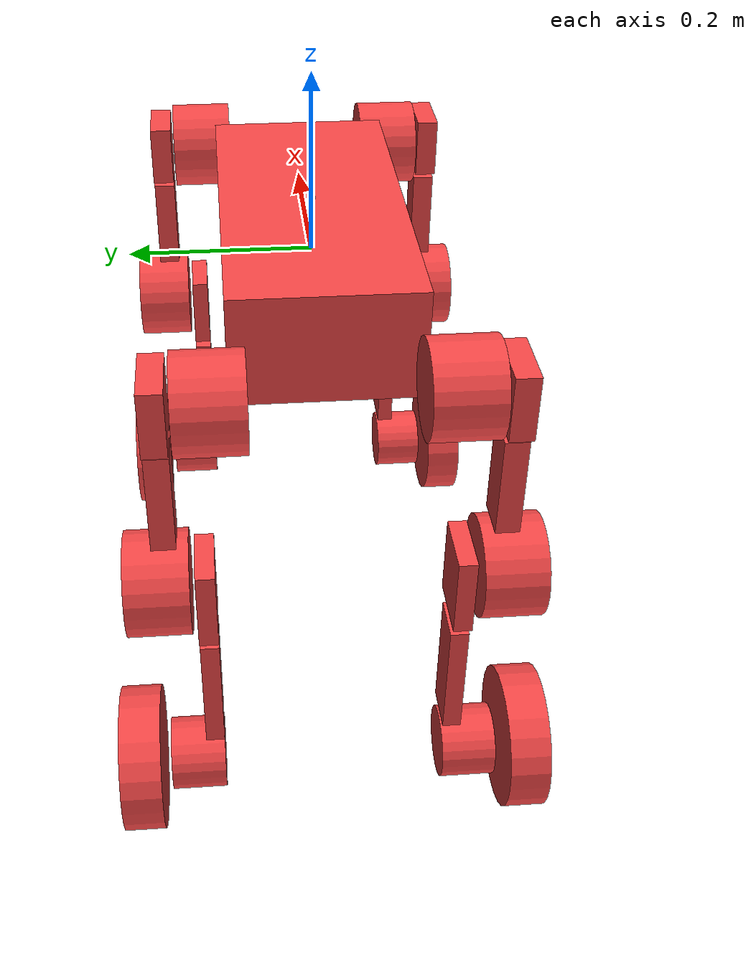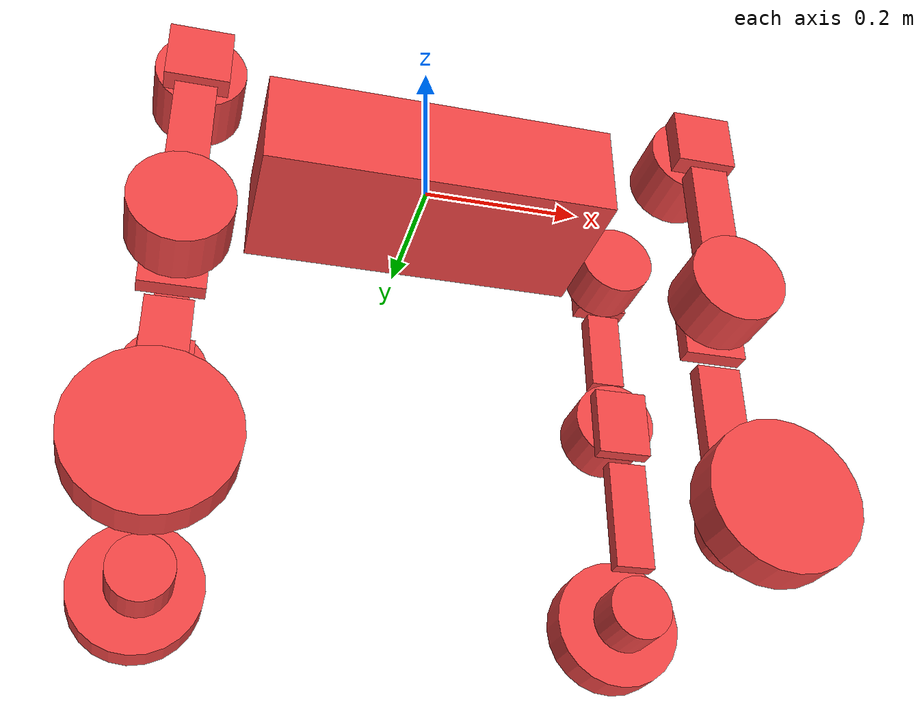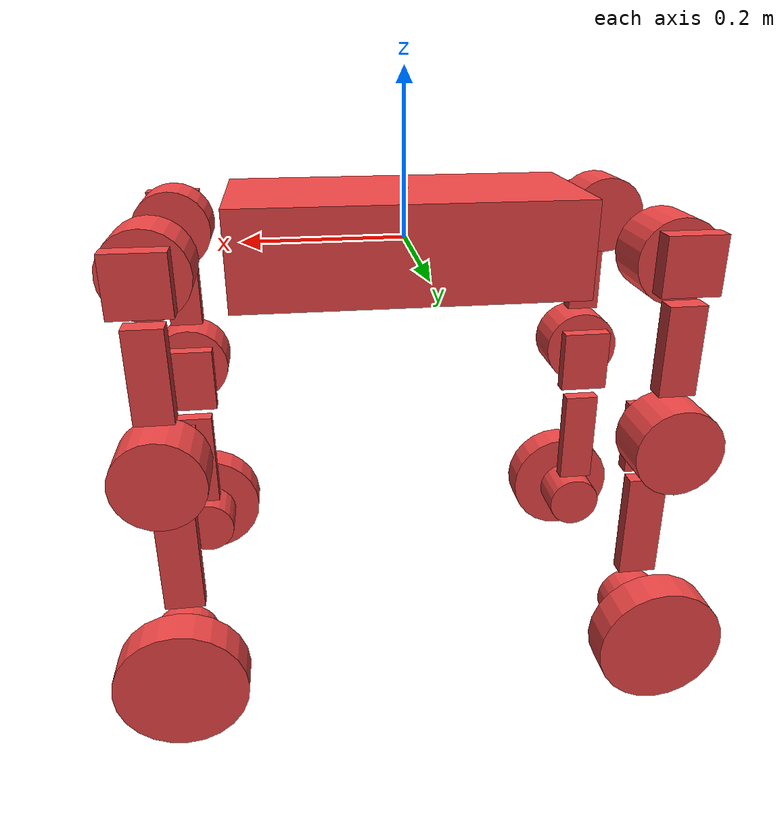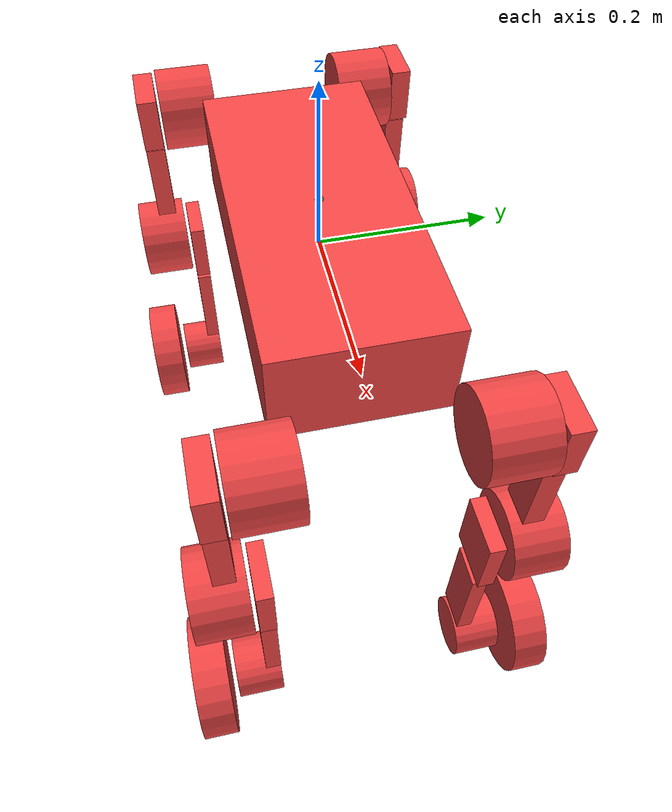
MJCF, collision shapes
<mujoco model="wolf">
  <compiler angle="radian" meshdir="assets/" inertiafromgeom="auto" inertiagrouprange="3 3" />
  <asset>
    <mesh name="base_link_simplified" file="base_link.STL" />
    <mesh name="FL_Link1" file="FL_Link1.STL" />
    <mesh name="FL_Link2" file="FL_Link2.STL" />
    <mesh name="FL_Link3" file="FL_Link3.STL" />
    <mesh name="FL_Link4" file="FL_Link4.STL" />
    <mesh name="FR_Link1" file="FR_Link1.STL" />
    <mesh name="FR_Link2" file="FR_Link2.STL" />
    <mesh name="FR_Link3" file="FR_Link3.STL" />
    <mesh name="FR_Link4" file="FR_Link4.STL" />
    <mesh name="RL_Link1" file="RL_Link1.STL" />
    <mesh name="RL_Link2" file="RL_Link2.STL" />
    <mesh name="RL_Link3" file="RL_Link3.STL" />
    <mesh name="RL_Link4" file="RL_Link4.STL" />
    <mesh name="RR_Link1" file="RR_Link1.STL" />
    <mesh name="RR_Link2" file="RR_Link2.STL" />
    <mesh name="RR_Link3" file="RR_Link3.STL" />
    <mesh name="RR_Link4" file="RR_Link4.STL" />
    <material name="base_link_mat" rgba="1 1 1 1" specular="0" />
    <material name="FL_Link1_mat" rgba="1 1 1 1" specular="0" />
    <material name="FL_Link2_mat" rgba="1 1 1 1" specular="0" />
    <material name="FL_Link3_mat" rgba="1 1 1 1" specular="0" />
    <material name="FL_Link4_mat" rgba="1 1 1 1" specular="0" />
    <material name="FR_Link1_mat" rgba="1 1 1 1" specular="0" />
    <material name="FR_Link2_mat" rgba="1 1 1 1" specular="0" />
    <material name="FR_Link3_mat" rgba="1 1 1 1" specular="0" />
    <material name="FR_Link4_mat" rgba="1 1 1 1" specular="0" />
    <material name="RL_Link1_mat" rgba="1 1 1 1" specular="0" />
    <material name="RL_Link2_mat" rgba="1 1 1 1" specular="0" />
    <material name="RL_Link3_mat" rgba="1 1 1 1" specular="0" />
    <material name="RL_Link4_mat" rgba="1 1 1 1" specular="0" />
    <material name="RR_Link1_mat" rgba="1 1 1 1" specular="0" />
    <material name="RR_Link2_mat" rgba="1 1 1 1" specular="0" />
    <material name="RR_Link3_mat" rgba="1 1 1 1" specular="0" />
    <material name="RR_Link4_mat" rgba="1 1 1 1" specular="0" />
    <material name="imu_Link_mat" rgba="1 1 1 1" specular="0" />
  </asset>

  <worldbody>
    <body name="base_link" pos="0 0 0">
      <freejoint/>
      <inertial pos="-0.025143 -5.7679e-8 -0.0042488" mass="9.9614" fullinertia="0.025591 0.03108 0.043798 4.8159e-7 -3.4836e-21 -3.987e-19"/>
      <geom pos="0 0 0" quat="0.7071067811865476 0 0 -0.7071067811865475" group="1" contype="0" conaffinity="0" mass="0" material="base_link_mat" type="mesh" mesh="base_link_simplified" />
      <!-- 躯干碰撞盒：与 URDF/mujoco/wolf 更新保持一致（Y 半宽 0.135 → 0.10） -->
      <geom pos="0 0 0" rgba="0.9372549019607843 0.26666666666666666 0.26666666666666666 1" group="3" contype="1" conaffinity="1" type="box" size="0.215 0.10 0.06" />
      <body name="FL_Link1" pos="0.2225 0.09 0" quat="0.4999990816978809 -0.5000009183004326 0.5000009183004325 -0.4999990816978808">
        <joint name="FL_hip" type="hinge" axis="0 0 1" limited="true" range="-0.6 0.8" damping="0" frictionloss="0"/>
        <inertial pos="-0.025322 0.000012207 0.068696" mass="1.4729" fullinertia="0.0020636 0.0011648 0.0010522 -9.4769e-7 0.0000024326 0.0000019093"/>
        <geom pos="0 0 0" group="1" contype="0" conaffinity="0" mass="0" material="FL_Link1_mat" type="mesh" mesh="FL_Link1" />
        <geom pos="-0.0276749993208796 -0.00234011933207512 0.071352763324976" quat="0.7071067811865476 0 0.7071067811865475 0" rgba="0.9372549019607843 0.26666666666666666 0.26666666666666666 1" group="3" contype="1" conaffinity="1" type="cylinder" size="0.05052599018711037 0.035" />
        <body name="FL_Link2" pos="-0.06735 0 0.075" quat="0.4999981633974483 0.49999999999662686 -0.5000018366025516 -0.49999999999662686">
          <joint name="FL_thigh" type="hinge" axis="0 0 1" limited="true" range="-3.14159 3.14159" damping="0" frictionloss="0"/>
          <inertial pos="-0.18046 -0.000023231 0.016521" mass="1.7698" fullinertia="0.0011502 0.0026128 0.0036337 -5.7767e-7 1.204e-7 -7.4721e-7"/>
          <geom pos="0 0 0" group="1" contype="0" conaffinity="0" mass="0" material="FL_Link2_mat" type="mesh" mesh="FL_Link2" />
          <geom pos="-0.1 0 0.012" rgba="0.9372549019607843 0.26666666666666666 0.26666666666666666 1" group="3" contype="1" conaffinity="1" type="box" size="0.055 0.0225 0.0125" />
          <geom pos="-0.216 0 0.0213749995455146" rgba="0.9372549019607843 0.26666666666666666 0.26666666666666666 1" group="3" contype="1" conaffinity="1" type="cylinder" size="0.05434045172729264 0.0327249987795949" />
          <geom pos="0 0 0.012" rgba="0.9372549019607843 0.26666666666666666 0.26666666666666666 1" group="3" contype="1" conaffinity="1" type="box" size="0.035 0.035 0.0125" />
          <body name="FL_Link3" pos="-0.22 0 -0.01635" quat="1.3492435731251315e-11 0.0000036732051033217936 0.9999999999865075 0.0000036732051033217936">
            <joint name="FL_calf" type="hinge" axis="0 0 1" limited="true" range="-2.72 2.72" damping="0" frictionloss="0"/>
            <inertial pos="0.17933 0.0000053626 -0.0024049" mass="1.1536" fullinertia="0.00046468 0.0031314 0.0035559 -5.8902e-8 0.000001494 4.172e-8"/>
            <geom pos="0 0 0" group="1" contype="0" conaffinity="0" mass="0" material="FL_Link3_mat" type="mesh" mesh="FL_Link3" />
            <geom pos="0.14 0 0.01" rgba="0.9372549019607843 0.26666666666666666 0.26666666666666666 1" group="3" contype="1" conaffinity="1" type="box" size="0.07 0.025 0.01" />
            <geom pos="0.259998748641754 0.00285882694678705 -0.00992499757558107" rgba="0.9372549019607843 0.26666666666666666 0.26666666666666666 1" group="3" contype="1" conaffinity="1" type="cylinder" size="0.0398694217119591 0.029925002716481686" />
            <geom pos="0.01 0 0.01" rgba="0.9372549019607843 0.26666666666666666 0.26666666666666666 1" group="3" contype="1" conaffinity="1" type="box" size="0.045 0.035 0.0100005" />
            <body name="FL_Link4" pos="0.26 0 -0.03985" quat="1.3492435731251315e-11 0.0000036732051033217936 0.9999999999865075 0.0000036732051033217936">
              <joint name="FL_foot" type="hinge" axis="0 0 1" damping="0" frictionloss="0"/>
              <inertial pos="2.7756e-16 0 0.030708" mass="1.5305" fullinertia="0.0036061 0.0036061 0.0069124 3.3386e-19 1.6978e-19 2.2333e-19"/>
              <geom pos="0 0 0" group="1" contype="0" conaffinity="0" mass="0" material="FL_Link4_mat" type="mesh" mesh="FL_Link4" />
              <geom name="FL_wheel_collision" pos="0 0 0.032" rgba="0.9372549019607843 0.26666666666666666 0.26666666666666666 1" group="3" contype="1" conaffinity="1" type="cylinder" size="0.08 0.0225" />
            </body>
          </body>
        </body>
      </body>
      <body name="FR_Link1" pos="0.2225 -0.09 0" quat="0.4999990816978809 -0.5000009183004326 0.5000009183004325 -0.4999990816978808">
        <joint name="FR_hip" type="hinge" axis="0 0 1" limited="true" range="-0.8 0.6" damping="0" frictionloss="0"/>
        <inertial pos="0.025322 -0.000012207 0.068696" mass="1.4729" fullinertia="0.0020636 0.0011648 0.0010522 -9.4769e-7 -0.0000024326 -0.0000019093"/>
        <geom pos="0 0 0" group="1" contype="0" conaffinity="0" mass="0" material="FR_Link1_mat" type="mesh" mesh="FR_Link1" />
        <geom pos="0.0276749993208796 0.00234011933207512 0.071352763324976" quat="0.7071067811865476 0 0.7071067811865475 0" rgba="0.9372549019607843 0.26666666666666666 0.26666666666666666 1" group="3" contype="1" conaffinity="1" type="cylinder" size="0.05052599018711037 0.035" />
        <body name="FR_Link2" pos="0.06735 0 0.075" quat="0.4999981633974483 0.49999999999662686 0.5000018366025516 0.49999999999662686">
          <joint name="FR_thigh" type="hinge" axis="0 0 1" limited="true" range="-3.14159 3.14159" damping="0" frictionloss="0"/>
          <inertial pos="0.18046 0.000023231 0.016521" mass="1.7698" fullinertia="0.0011502 0.0026128 0.0036337 -5.7767e-7 -1.204e-7 7.4721e-7"/>
          <geom pos="0 0 0" group="1" contype="0" conaffinity="0" mass="0" material="FR_Link2_mat" type="mesh" mesh="FR_Link2" />
          <geom pos="0.1 0 0.012" rgba="0.9372549019607843 0.26666666666666666 0.26666666666666666 1" group="3" contype="1" conaffinity="1" type="box" size="0.055 0.0225 0.0125" />
          <geom pos="0.216 0 0.0213749995455146" rgba="0.9372549019607843 0.26666666666666666 0.26666666666666666 1" group="3" contype="1" conaffinity="1" type="cylinder" size="0.05434045172729264 0.0327249987795949" />
          <geom pos="0 0 0.012" rgba="0.9372549019607843 0.26666666666666666 0.26666666666666666 1" group="3" contype="1" conaffinity="1" type="box" size="0.035 0.035 0.0125" />
          <body name="FR_Link3" pos="0.22 0 -0.01635" quat="1.3492435731251315e-11 -0.0000036732051033217936 -0.9999999999865075 0.0000036732051033217936">
            <joint name="FR_calf" type="hinge" axis="0 0 1" limited="true" range="-2.72 2.72" damping="0" frictionloss="0"/>
            <inertial pos="-0.17933 -0.0000053626 -0.0024049" mass="1.1536" fullinertia="0.00046468 0.0031314 0.0035559 -5.8902e-8 -0.000001494 -4.172e-8"/>
            <geom pos="0 0 0" group="1" contype="0" conaffinity="0" mass="0" material="FR_Link3_mat" type="mesh" mesh="FR_Link3" />
            <geom pos="-0.14 0 0.01" rgba="0.9372549019607843 0.26666666666666666 0.26666666666666666 1" group="3" contype="1" conaffinity="1" type="box" size="0.07 0.025 0.01" />
            <geom pos="-0.259998748641754 -0.00285882694678705 -0.00992499757558107" rgba="0.9372549019607843 0.26666666666666666 0.26666666666666666 1" group="3" contype="1" conaffinity="1" type="cylinder" size="0.0398694217119591 0.029925002716481686" />
            <geom pos="-0.01 0 0.01" rgba="0.9372549019607843 0.26666666666666666 0.26666666666666666 1" group="3" contype="1" conaffinity="1" type="box" size="0.045 0.035 0.0100005" />
            <body name="FR_Link4" pos="-0.26 0 -0.03985" quat="1.3492435731251315e-11 -0.0000036732051033217936 -0.9999999999865075 0.0000036732051033217936">
              <joint name="FR_foot" type="hinge" axis="0 0 1" damping="0" frictionloss="0"/>
              <inertial pos="-2.2204e-16 0 0.030708" mass="1.5305" fullinertia="0.0036061 0.0036061 0.0069124 5.2092e-20 1.2726e-19 1.2864e-20"/>
              <geom pos="0 0 0" group="1" contype="0" conaffinity="0" mass="0" material="FR_Link4_mat" type="mesh" mesh="FR_Link4" />
              <geom name="FR_wheel_collision" pos="0 0 0.032" rgba="0.9372549019607843 0.26666666666666666 0.26666666666666666 1" group="3" contype="1" conaffinity="1" type="cylinder" size="0.08 0.0225" />
            </body>
          </body>
        </body>
      </body>
      <body name="RL_Link1" pos="-0.2225 0.09 0" quat="0.4999990816978809 0.5000009183004326 -0.5000009183004325 -0.4999990816978808">
        <joint name="RL_hip" type="hinge" axis="0 0 1" limited="true" range="-0.8 0.6" damping="0" frictionloss="0"/>
        <inertial pos="-0.025322 0.000012207 0.068696" mass="1.4729" fullinertia="0.0020636 0.0011648 0.0010522 -9.4769e-7 0.0000024326 0.0000019093"/>
        <geom pos="0 0 0" group="1" contype="0" conaffinity="0" mass="0" material="RL_Link1_mat" type="mesh" mesh="RL_Link1" />
        <geom pos="-0.0276749993208796 -0.00234011933207512 0.071352763324976" quat="0.7071067811865476 0 0.7071067811865475 0" rgba="0.9372549019607843 0.26666666666666666 0.26666666666666666 1" group="3" contype="1" conaffinity="1" type="cylinder" size="0.05052599018711037 0.035" />
        <body name="RL_Link2" pos="-0.06735 0 0.075" quat="0.4999981633974483 -0.49999999999662686 -0.5000018366025516 0.49999999999662686">
          <joint name="RL_thigh" type="hinge" axis="0 0 1" limited="true" range="-3.14159 3.14159" damping="0" frictionloss="0"/>
          <inertial pos="-0.18046 -0.000023231 0.016521" mass="1.7698" fullinertia="0.0011502 0.0026128 0.0036337 -5.7767e-7 1.204e-7 -7.4721e-7"/>
          <geom pos="0 0 0" group="1" contype="0" conaffinity="0" mass="0" material="RL_Link2_mat" type="mesh" mesh="RL_Link2" />
          <geom pos="-0.1 0 0.012" rgba="0.9372549019607843 0.26666666666666666 0.26666666666666666 1" group="3" contype="1" conaffinity="1" type="box" size="0.055 0.0225 0.0125" />
          <geom pos="-0.216 0 0.0213749995455146" rgba="0.9372549019607843 0.26666666666666666 0.26666666666666666 1" group="3" contype="1" conaffinity="1" type="cylinder" size="0.05434045172729264 0.0327249987795949" />
          <geom pos="0 0 0.012" rgba="0.9372549019607843 0.26666666666666666 0.26666666666666666 1" group="3" contype="1" conaffinity="1" type="box" size="0.035 0.035 0.0125" />
          <body name="RL_Link3" pos="-0.22 0 -0.01635" quat="1.3492435731251315e-11 -0.0000036732051033217936 -0.9999999999865075 0.0000036732051033217936">
            <joint name="RL_calf" type="hinge" axis="0 0 1" limited="true" range="-2.72 2.72" damping="0" frictionloss="0"/>
            <inertial pos="0.17933 0.0000053626 -0.0024049" mass="1.1536" fullinertia="0.00046468 0.0031314 0.0035559 -5.8902e-8 0.000001494 4.172e-8"/>
            <geom pos="0 0 0" group="1" contype="0" conaffinity="0" mass="0" material="RL_Link3_mat" type="mesh" mesh="RL_Link3" />
            <geom pos="0.14 0 0.01" rgba="0.9372549019607843 0.26666666666666666 0.26666666666666666 1" group="3" contype="1" conaffinity="1" type="box" size="0.07 0.025 0.01" />
            <geom pos="0.259998748641754 0.00285882694678705 -0.00992499757558107" rgba="0.9372549019607843 0.26666666666666666 0.26666666666666666 1" group="3" contype="1" conaffinity="1" type="cylinder" size="0.0398694217119591 0.029925002716481686" />
            <geom pos="0.01 0 0.01" rgba="0.9372549019607843 0.26666666666666666 0.26666666666666666 1" group="3" contype="1" conaffinity="1" type="box" size="0.045 0.035 0.0100005" />
            <body name="RL_Link4" pos="0.26 0 -0.03985" quat="1.3492435731251315e-11 -0.0000036732051033217936 0.9999999999865075 -0.0000036732051033217936">
              <joint name="RL_foot" type="hinge" axis="0 0 1" damping="0" frictionloss="0"/>
              <inertial pos="1.1102e-16 -1.1102e-16 0.030708" mass="1.5305" fullinertia="0.0036061 0.0036061 0.0069124 -3.0749e-19 -2.5461e-19 1.3246e-19"/>
              <geom pos="0 0 0" group="1" contype="0" conaffinity="0" mass="0" material="RL_Link4_mat" type="mesh" mesh="RL_Link4" />
              <geom name="RL_wheel_collision" pos="0 0 0.032" rgba="0.9372549019607843 0.26666666666666666 0.26666666666666666 1" group="3" contype="1" conaffinity="1" type="cylinder" size="0.08 0.0225" />
            </body>
          </body>
        </body>
      </body>
      <body name="RR_Link1" pos="-0.2225 -0.09 0" quat="0.4999990816978809 0.5000009183004326 -0.5000009183004325 -0.4999990816978808">
        <joint name="RR_hip" type="hinge" axis="0 0 1" limited="true" range="-0.6 0.8" damping="0" frictionloss="0"/>
        <inertial pos="0.025322 -0.000012207 0.068696" mass="1.4729" fullinertia="0.0020636 0.0011648 0.0010522 -9.4769e-7 -0.0000024326 -0.0000019093"/>
        <geom pos="0 0 0" group="1" contype="0" conaffinity="0" mass="0" material="RR_Link1_mat" type="mesh" mesh="RR_Link1" />
        <geom pos="0.0276749993208796 0.00234011933207512 0.071352763324976" quat="0.7071067811865476 0 0.7071067811865475 0" rgba="0.9372549019607843 0.26666666666666666 0.26666666666666666 1" group="3" contype="1" conaffinity="1" type="cylinder" size="0.05052599018711037 0.035" />
        <body name="RR_Link2" pos="0.06735 0 0.075" quat="0.4999981633974483 -0.49999999999662686 0.5000018366025516 -0.49999999999662686">
          <joint name="RR_thigh" type="hinge" axis="0 0 1" limited="true" range="-3.14159 3.14159" damping="0" frictionloss="0"/>
          <inertial pos="0.18046 0.000023231 0.016521" mass="1.7698" fullinertia="0.0011502 0.0026128 0.0036337 -5.7767e-7 -1.204e-7 7.4721e-7"/>
          <geom pos="0 0 0" group="1" contype="0" conaffinity="0" mass="0" material="RR_Link2_mat" type="mesh" mesh="RR_Link2" />
          <geom pos="0.1 0 0.012" rgba="0.9372549019607843 0.26666666666666666 0.26666666666666666 1" group="3" contype="1" conaffinity="1" type="box" size="0.055 0.0225 0.0125" />
          <geom pos="0.216 0 0.0213749995455146" rgba="0.9372549019607843 0.26666666666666666 0.26666666666666666 1" group="3" contype="1" conaffinity="1" type="cylinder" size="0.05434045172729264 0.0327249987795949" />
          <geom pos="0 0 0.012" rgba="0.9372549019607843 0.26666666666666666 0.26666666666666666 1" group="3" contype="1" conaffinity="1" type="box" size="0.035 0.035 0.0125" />
          <body name="RR_Link3" pos="0.22 0 -0.01635" quat="1.3492435731251315e-11 -0.0000036732051033217936 -0.9999999999865075 0.0000036732051033217936">
            <joint name="RR_calf" type="hinge" axis="0 0 1" limited="true" range="-2.72 2.72" damping="0" frictionloss="0"/>
            <inertial pos="-0.17933 -0.0000053688 -0.0024049" mass="1.1536" fullinertia="0.00046468 0.0031314 0.0035559 -5.8886e-8 -0.000001494 -4.172e-8"/>
            <geom pos="0 0 0" group="1" contype="0" conaffinity="0" mass="0" material="RR_Link3_mat" type="mesh" mesh="RR_Link3" />
            <geom pos="-0.14 0 0.01" rgba="0.9372549019607843 0.26666666666666666 0.26666666666666666 1" group="3" contype="1" conaffinity="1" type="box" size="0.07 0.025 0.01" />
            <geom pos="-0.259998748641754 -0.00285882694678705 -0.00992499757558107" rgba="0.9372549019607843 0.26666666666666666 0.26666666666666666 1" group="3" contype="1" conaffinity="1" type="cylinder" size="0.0398694217119591 0.029925002716481686" />
            <geom pos="-0.01 0 0.01" rgba="0.9372549019607843 0.26666666666666666 0.26666666666666666 1" group="3" contype="1" conaffinity="1" type="box" size="0.045 0.035 0.0100005" />
            <body name="RR_Link4" pos="-0.26 0 -0.03985" quat="1.3492435731251315e-11 0.0000036732051033217936 0.9999999999865075 0.0000036732051033217936">
              <joint name="RR_foot" type="hinge" axis="0 0 1" damping="0" frictionloss="0"/>
              <inertial pos="-7.2164e-16 -1.3323e-15 0.030708" mass="1.5305" fullinertia="0.0036061 0.0036061 0.0069124 5.1632e-20 1.2842e-19 2.7795e-20"/>
              <geom pos="0 0 0" group="1" contype="0" conaffinity="0" mass="0" material="RR_Link4_mat" type="mesh" mesh="RR_Link4" />
              <geom name="RR_wheel_collision" pos="0 0 0.032" rgba="0.9372549019607843 0.26666666666666666 0.26666666666666666 1" group="3" contype="1" conaffinity="1" type="cylinder" size="0.08 0.0225" />
            </body>
          </body>
        </body>
      </body>
      <body name="imu_Link" pos="0 0 0.05975">
        <site name="imu_site" pos="0 0 0"
              quat="1 0 0 0" size="0.005"/>
      </body>
    </body>
  </worldbody>
  <sensor>
    <gyro name="imu_ang_vel" site="imu_site"/>
    <framezaxis name="imu_upvector"
                objtype="body"
                objname="world"
                reftype="site"
                refname="imu_site"/>
  </sensor>
</mujoco>
